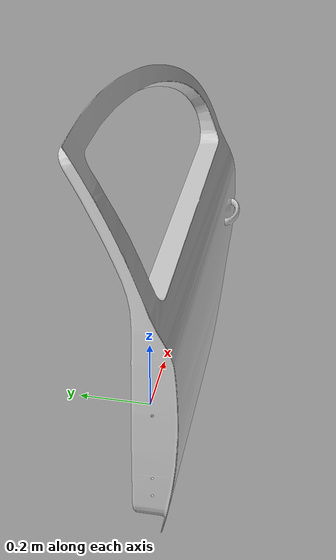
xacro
<?xml version="1.0"?>
<robot xmlns:xacro="http://www.ros.org/wiki/xacro" name="door">

    <xacro:macro name="door" params="prefix">

        <link name="${prefix}door_frame">

            <inertial>
                <origin xyz="0 0 0" rpy="0 0 0"/>
                <mass value="0.1"/>
                <inertia ixx="0.01" ixy="0" ixz="0" iyy="0.01" iyz="0" izz="0.01" />
            </inertial>

            <visual>
                <origin xyz="0 0 0" rpy="0 0 0" />
                <geometry>
                    <mesh filename="package://hpp-ipa/meshes/Door_m.STL"/>
                </geometry>
                <material name="greyish">
                    <color rgba="0.8 0.8 0.8 1"/>
                </material>
            </visual>

            <collision>
                <origin xyz="0 0 0" rpy="0 0 0" />
                <geometry>
                    <mesh filename="package://hpp-ipa/meshes/Door_m.STL"/>
                </geometry>
            </collision>

        </link>

    </xacro:macro>

    <xacro:door prefix=""/>

</robot>
